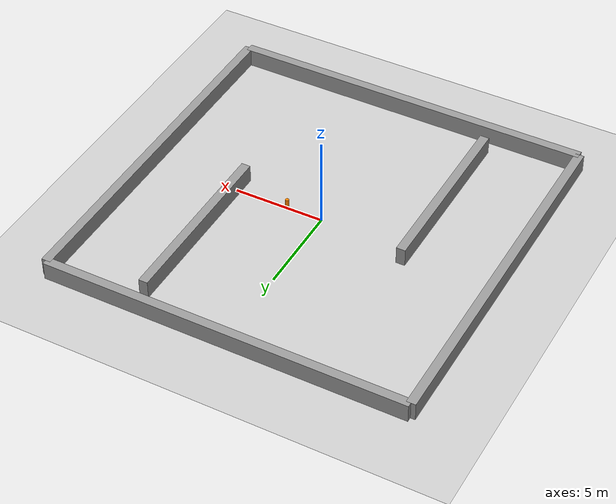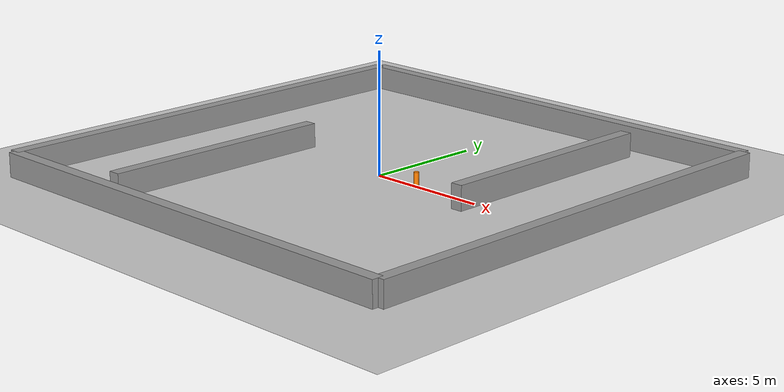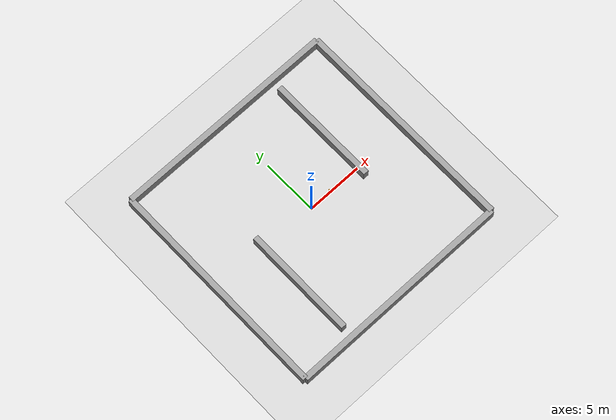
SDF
<?xml version="1.0" ?>
<sdf version="1.7">
  <world name="s_path_two_walls">

    <!-- Lighting -->
    <light name="sun" type="directional">
      <cast_shadows>1</cast_shadows>
      <pose>0 0 10 0 -0 0</pose>
      <diffuse>0.8 0.8 0.8 1</diffuse>
      <specular>0.2 0.2 0.2 1</specular>
      <attenuation>
        <range>1000</range>
        <constant>0.9</constant>
        <linear>0.01</linear>
        <quadratic>0.001</quadratic>
      </attenuation>
      <direction>-0.5 0.1 -0.9</direction>
    </light>

    <!-- Ground -->
    <model name="ground_plane">
      <static>1</static>
      <link name="link">
        <collision name="collision">
          <geometry>
            <plane>
              <normal>0 0 1</normal>
              <size>100 100</size>
            </plane>
          </geometry>
        </collision>
        <visual name="visual">
          <cast_shadows>0</cast_shadows>
          <geometry>
            <plane>
              <normal>0 0 1</normal>
              <size>100 100</size>
            </plane>
          </geometry>
          <material>
            <script>
              <uri>file://media/materials/scripts/gazebo.material</uri>
              <name>Gazebo/Grey</name>
            </script>
          </material>
        </visual>
      </link>
    </model>

    <!-- Outer Boundary Walls -->
    <model name="wall_top">
      <static>true</static>
      <link name="link">
        <pose>0 10 0.5 0 0 0</pose>
        <collision name="collision">
          <geometry><box><size>20 0.5 1</size></box></geometry>
        </collision>
        <visual name="visual">
          <geometry><box><size>20 0.5 1</size></box></geometry>
          <material><script><uri>file://media/materials/scripts/gazebo.material</uri><name>Gazebo/Gray</name></script></material>
        </visual>
      </link>
    </model>

    <model name="wall_bottom">
      <static>true</static>
      <link name="link">
        <pose>0 -10 0.5 0 0 0</pose>
        <collision name="collision">
          <geometry><box><size>20 0.5 1</size></box></geometry>
        </collision>
        <visual name="visual">
          <geometry><box><size>20 0.5 1</size></box></geometry>
          <material><script><uri>file://media/materials/scripts/gazebo.material</uri><name>Gazebo/Gray</name></script></material>
        </visual>
      </link>
    </model>

    <model name="wall_left">
      <static>true</static>
      <link name="link">
        <pose>-10 0 0.5 0 0 0</pose>
        <collision name="collision">
          <geometry><box><size>0.5 20 1</size></box></geometry>
        </collision>
        <visual name="visual">
          <geometry><box><size>0.5 20 1</size></box></geometry>
          <material><script><uri>file://media/materials/scripts/gazebo.material</uri><name>Gazebo/Gray</name></script></material>
        </visual>
      </link>
    </model>

    <model name="wall_right">
      <static>true</static>
      <link name="link">
        <pose>10 0 0.5 0 0 0</pose>
        <collision name="collision">
          <geometry><box><size>0.5 20 1</size></box></geometry>
        </collision>
        <visual name="visual">
          <geometry><box><size>0.5 20 1</size></box></geometry>
          <material><script><uri>file://media/materials/scripts/gazebo.material</uri><name>Gazebo/Gray</name></script></material>
        </visual>
      </link>
    </model>

    <!-- S-Path Two Inner Walls -->
    <model name="inner_wall_1">
      <static>true</static>
      <link name="link">
        <pose>5 4 0.5 0 0 0</pose>
        <collision name="collision">
          <geometry><box><size>0.5 10 1</size></box></geometry>
        </collision>
        <visual name="visual">
          <geometry><box><size>0.5 10 1</size></box></geometry>
          <material><script><uri>file://media/materials/scripts/gazebo.material</uri><name>Gazebo/Gray</name></script></material>
        </visual>
      </link>
    </model>

    <model name="inner_wall_2">
      <static>true</static>
      <link name="link">
        <pose>-5 -4 0.5 0 0 0</pose>
        <collision name="collision">
          <geometry><box><size>0.5 10 1</size></box></geometry>
        </collision>
        <visual name="visual">
          <geometry><box><size>0.5 10 1</size></box></geometry>
          <material><script><uri>file://media/materials/scripts/gazebo.material</uri><name>Gazebo/Gray</name></script></material>
        </visual>
      </link>
    </model>

    <!-- Orange Cone -->
    <model name="orange_cone">
      <static>true</static>
      <link name="link">
        <pose>2 0 0.3 0 0 0</pose>
        <visual name="visual">
          <geometry>
            <cylinder>
              <radius>0.1</radius>
              <length>0.6</length>
            </cylinder>
          </geometry>
          <material>
            <ambient>1 0.5 0 1</ambient>
            <diffuse>1 0.5 0 1</diffuse>
          </material>
        </visual>
        <collision name="collision">
          <geometry>
            <cylinder>
              <radius>0.1</radius>
              <length>0.6</length>
            </cylinder>
          </geometry>
        </collision>
      </link>
    </model>

    <!-- Physics -->
    <gravity>0 0 -9.8</gravity>
    <physics type='ode'>
      <max_step_size>0.001</max_step_size>
      <real_time_factor>1</real_time_factor>
      <real_time_update_rate>1000</real_time_update_rate>
    </physics>

    <scene>
      <ambient>0.4 0.4 0.4 1</ambient>
      <background>0.7 0.7 0.7 1</background>
      <shadows>1</shadows>
    </scene>

  </world>
</sdf>
